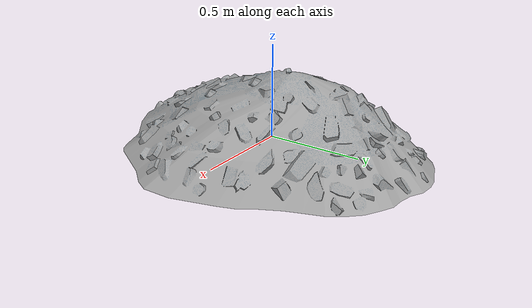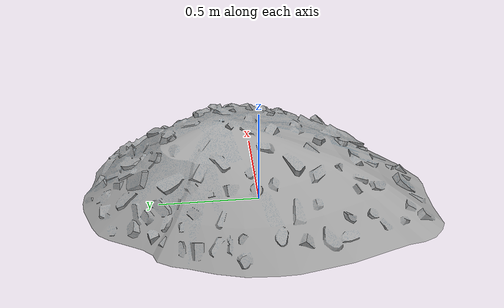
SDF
<?xml version='1.0'?>
<sdf version='1.6'>
  <model name='debris_3_2'>
    <link name='link_6'>
      <pose frame=''>0 0 0 0 -0 0</pose>
      <inertial>
        <mass>1</mass>
        <inertia>
          <ixx>0.166667</ixx>
          <ixy>0</ixy>
          <ixz>0</ixz>
          <iyy>0.166667</iyy>
          <iyz>0</iyz>
          <izz>0.166667</izz>
        </inertia>
      </inertial>
      <visual name='visual'>
        <pose frame=''>0 0 0 0 -0 0</pose>
        <geometry>
          <mesh>
            <uri>model://debris_3_2/meshes/debris_3_2.dae</uri>
            <scale>1 1 1</scale>
          </mesh>
        </geometry>
           	<material>
          <script>
            <uri>model://debris_3_2/materials/scripts</uri>
            <uri>model://debris_3_2/materials/textures</uri>
            <name>debris_3</name>
          </script>
        </material>
        <cast_shadows>1</cast_shadows>
        <transparency>0</transparency>
      </visual>
      <collision name='collision'>
        <laser_retro>0</laser_retro>
        <max_contacts>10</max_contacts>
        <pose frame=''>0 0 0 0 -0 0</pose>
        <geometry>
          <mesh>
            <uri>model://debris_3_2/meshes/debris_3_2.dae</uri>
            <scale>1 1 1</scale>
          </mesh>
        </geometry>

      </collision>
    </link>
    <static>1</static>
    <allow_auto_disable>1</allow_auto_disable>
  </model>
</sdf>
